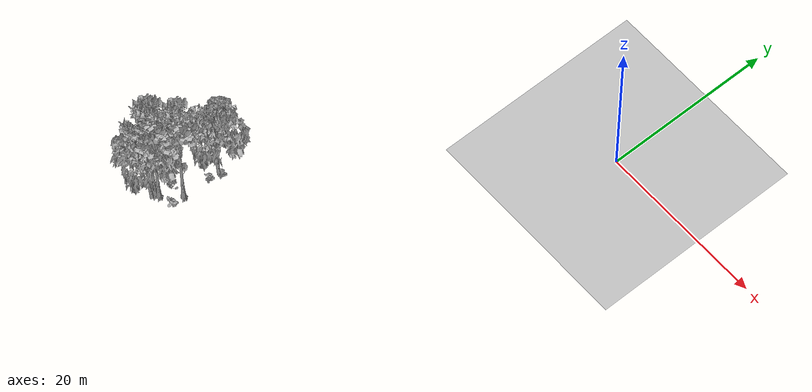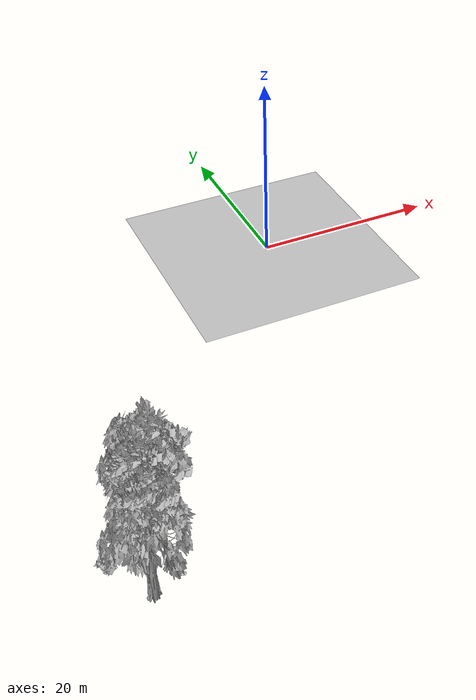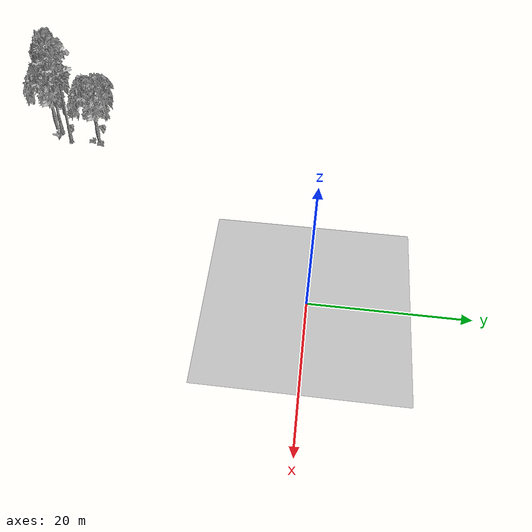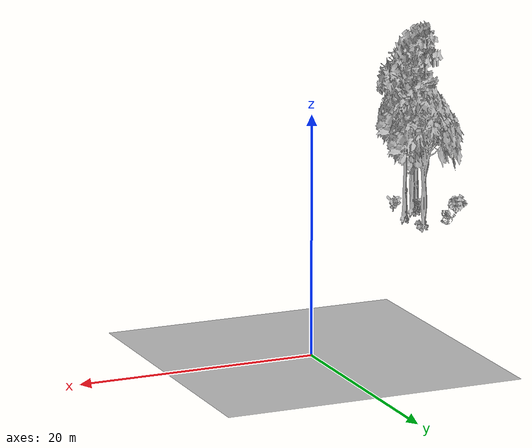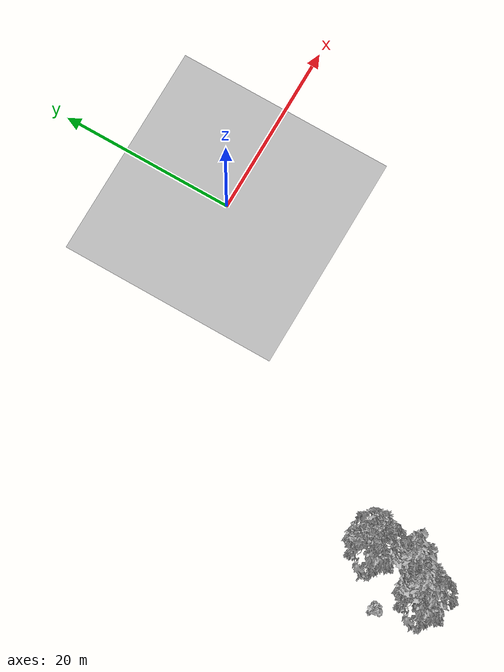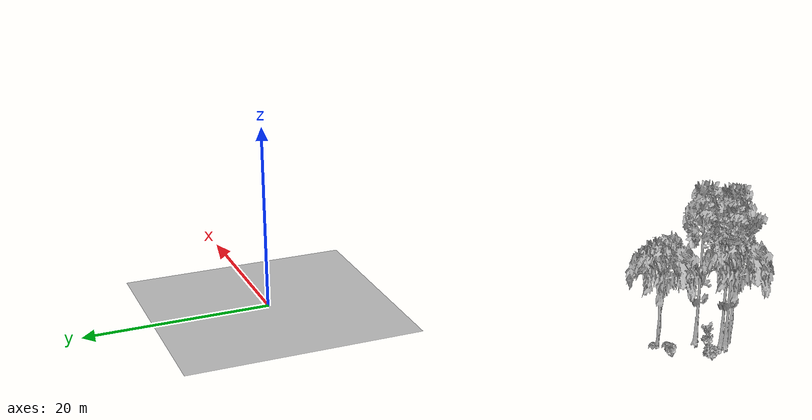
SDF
<sdf version="1.7">
 <world name="default">
  <model name="ground_plane">
   <static>1</static>
   <link name="link">
    <collision name="collision">
     <pose>-50 0 0 0 -0 0</pose>
     <geometry><plane><normal>0 0 1</normal><size>80 80</size></plane></geometry>
     <surface><contact><ode><min_depth>0.01</min_depth><max_vel>0</max_vel></ode></contact></surface>
    </collision>
    <visual name="grass">
     <cast_shadows>0</cast_shadows>
     <geometry>
      <mesh>
       <scale>0.46714285714285714 0.46714285714285714 0.1</scale>
       <uri>file://grass_plane/meshes/grass_plane.dae</uri>
      </mesh>
     </geometry>
    </visual>
   </link>
  </model>
  <model name="Tree 226">
   <static>1</static>
   <pose>-28.03489130080743 -39.13113921502343 0 1.57079 -0 0</pose>
   <link name="link">
    <collision name="collision">
     <geometry><mesh><scale>3.5 5 3.5</scale><uri>model://tree_9/meshes/tree_9.obj</uri></mesh></geometry>
    </collision>
    <visual name="visual">
     <geometry><mesh><scale>3.5 5 3.5</scale><uri>model://tree_9/meshes/tree_9.obj</uri></mesh></geometry>
    </visual>
   </link>
  </model>
  <model name="Tree 235">
   <static>1</static>
   <pose>-27.94398295687072 -39.71848169135498 0 1.57079 -0 0</pose>
   <link name="link">
    <collision name="collision">
     <geometry><mesh><scale>3.5 5 3.5</scale><uri>model://tree_2/meshes/tree_2.obj</uri></mesh></geometry>
    </collision>
    <visual name="visual">
     <geometry><mesh><scale>3.5 5 3.5</scale><uri>model://tree_2/meshes/tree_2.obj</uri></mesh></geometry>
    </visual>
   </link>
  </model>
  <model name="Tree 360">
   <static>1</static>
   <pose>-25.726176305554535 -32.591269166631 0 1.57079 -0 0</pose>
   <link name="link">
    <collision name="collision">
     <geometry><mesh><scale>3.5 5 3.5</scale><uri>model://tree_2/meshes/tree_2.obj</uri></mesh></geometry>
    </collision>
    <visual name="visual">
     <geometry><mesh><scale>3.5 5 3.5</scale><uri>model://tree_2/meshes/tree_2.obj</uri></mesh></geometry>
    </visual>
   </link>
  </model>
  <model name="Tree 464">
   <static>1</static>
   <pose>-27.580401504085007 -38.93986885417088 0 1.57079 -0 0</pose>
   <link name="link">
    <collision name="collision">
     <geometry><mesh><scale>3.5 5 3.5</scale><uri>model://tree_9/meshes/tree_9.obj</uri></mesh></geometry>
    </collision>
    <visual name="visual">
     <geometry><mesh><scale>3.5 5 3.5</scale><uri>model://tree_9/meshes/tree_9.obj</uri></mesh></geometry>
    </visual>
   </link>
  </model>
  <model name="Tree 576">
   <static>1</static>
   <pose>-25.88456275335909 -37.030145605497886 0 1.57079 -0 0</pose>
   <link name="link">
    <collision name="collision">
     <geometry><mesh><scale>3.5 5 3.5</scale><uri>model://tree_9/meshes/tree_9.obj</uri></mesh></geometry>
    </collision>
    <visual name="visual">
     <geometry><mesh><scale>3.5 5 3.5</scale><uri>model://tree_9/meshes/tree_9.obj</uri></mesh></geometry>
    </visual>
   </link>
  </model>
  <model name="Bush 74">
   <static>1</static>
   <pose>-25.45281555230418 -32.35181855013433 0 1.57079 -0 0</pose>
   <link name="link">
    <collision name="collision">
     <geometry><mesh><scale>2 2 2</scale><uri>model://bush_2/meshes/bush_2.obj</uri></mesh></geometry>
     <surface><contact><collide_without_contact>false</collide_without_contact></contact></surface>
    </collision>
    <visual name="visual">
     <geometry><mesh><scale>2 2 2</scale><uri>model://bush_2/meshes/bush_2.obj</uri></mesh></geometry>
    </visual>
   </link>
  </model>
  <model name="Bush 135">
   <static>1</static>
   <pose>-28.01635324819866 -32.63016986756283 0 1.57079 -0 0</pose>
   <link name="link">
    <collision name="collision">
     <geometry><mesh><scale>2 2 2</scale><uri>model://bush_4/meshes/bush_4.obj</uri></mesh></geometry>
     <surface><contact><collide_without_contact>false</collide_without_contact></contact></surface>
    </collision>
    <visual name="visual">
     <geometry><mesh><scale>2 2 2</scale><uri>model://bush_4/meshes/bush_4.obj</uri></mesh></geometry>
    </visual>
   </link>
  </model>
  <model name="Bush 462">
   <static>1</static>
   <pose>-27.48999362331547 -37.41172110289004 0 1.57079 -0 0</pose>
   <link name="link">
    <collision name="collision">
     <geometry><mesh><scale>2 2 2</scale><uri>model://bush_4/meshes/bush_4.obj</uri></mesh></geometry>
     <surface><contact><collide_without_contact>false</collide_without_contact></contact></surface>
    </collision>
    <visual name="visual">
     <geometry><mesh><scale>2 2 2</scale><uri>model://bush_4/meshes/bush_4.obj</uri></mesh></geometry>
    </visual>
   </link>
  </model>
  <model name="Bush 525">
   <static>1</static>
   <pose>-25.49709139286497 -38.70921452020738 0 1.57079 -0 0</pose>
   <link name="link">
    <collision name="collision">
     <geometry><mesh><scale>2 2 2</scale><uri>model://bush_0/meshes/bush_0.obj</uri></mesh></geometry>
     <surface><contact><collide_without_contact>false</collide_without_contact></contact></surface>
    </collision>
    <visual name="visual">
     <geometry><mesh><scale>2 2 2</scale><uri>model://bush_0/meshes/bush_0.obj</uri></mesh></geometry>
    </visual>
   </link>
  </model>
  <model name="Bush 567">
   <static>1</static>
   <pose>-30.446146876877442 -35.77596669333388 0 1.57079 -0 0</pose>
   <link name="link">
    <collision name="collision">
     <geometry><mesh><scale>2 2 2</scale><uri>model://bush_1/meshes/bush_1.obj</uri></mesh></geometry>
     <surface><contact><collide_without_contact>false</collide_without_contact></contact></surface>
    </collision>
    <visual name="visual">
     <geometry><mesh><scale>2 2 2</scale><uri>model://bush_1/meshes/bush_1.obj</uri></mesh></geometry>
    </visual>
   </link>
  </model>
  <model name="Bush 601">
   <static>1</static>
   <pose>-25.891532075874103 -33.65078854618847 0 1.57079 -0 0</pose>
   <link name="link">
    <collision name="collision">
     <geometry><mesh><scale>2 2 2</scale><uri>model://bush_2/meshes/bush_2.obj</uri></mesh></geometry>
     <surface><contact><collide_without_contact>false</collide_without_contact></contact></surface>
    </collision>
    <visual name="visual">
     <geometry><mesh><scale>2 2 2</scale><uri>model://bush_2/meshes/bush_2.obj</uri></mesh></geometry>
    </visual>
   </link>
  </model>
 </world>
</sdf>
